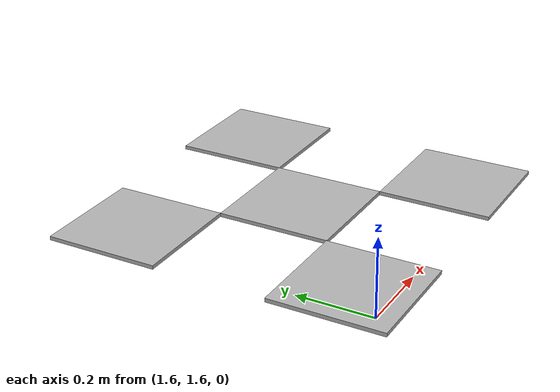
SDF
<?xml version="1.0" ?>
<sdf version="1.4">

	<model name='tag_bundle3'>

		<static>True</static>

		<link name="tag_10">

			<pose>2 2 0 0 1.5713 1.5713</pose>

			<inertial>
	        	<mass>0.1</mass>

	        	<inertia>
					<ixx>0.0166667</ixx>
					<ixy>0</ixy>
					<ixz>0</ixz>
					<iyy>0.0166667</iyy>
					<iyz>0</iyz>
					<izz>0.0166667</izz>
        		</inertia>

        		<pose frame=''>0 0 0 0 -0 0</pose>
      		</inertial>

			<pose frame=''>0 0 0 0 -0 0</pose>
			<gravity>1</gravity>
			<self_collide>0</self_collide>
			<kinematic>0</kinematic>
			<enable_wind>0</enable_wind>

			<visual name='visual_10'>
				<pose frame=''>0 0 0 0 -0 0</pose>

		        <geometry>
		        	<box>
		        	<size>0.01 0.3 0.3</size>
		        	</box>
		        </geometry>

		        <material>
		        	<lighting>0</lighting>

		        	<script>
		        		<uri>models://media/materials/scripts/Apriltag.material</uri>
		        		<name>Apriltag/id10</name>
		          	</script>

		        	<shader type='vertex'>
		        		<normal_map>__default__</normal_map>
		          	</shader>

		        	<ambient>0.3 0.3 0.3 1</ambient>
		        	<diffuse>0.7 0.7 0.7 1</diffuse>
		        	<specular>0.01 0.01 0.01 1</specular>
		        	<emissive>0 0 0 1</emissive>
		        </material>

		        <transparency>0</transparency>
		        <cast_shadows>1</cast_shadows>
			</visual>

			<collision name='collision_10'>
				<laser_retro>0</laser_retro>
        		<max_contacts>10</max_contacts>
        		<pose frame=''>0 0 0 0 -0 0</pose>

		        <geometry>
		        	<box>
		        		<size>0.01 0.3 0.3</size>
		        	</box>
		        </geometry>

		        <surface>
		        	<friction>
		            	<ode>
		            		<mu>1</mu>
		            		<mu2>1</mu2>
		            		<fdir1>0 0 0</fdir1>
		            		<slip1>0</slip1>
		            		<slip2>0</slip2>
		            	</ode>

		           		<torsional>
		            		<coefficient>1</coefficient>
	            			<patch_radius>0</patch_radius>
	            			<surface_radius>0</surface_radius>
	            			<use_patch_radius>1</use_patch_radius>

	            			<ode>
		                		<slip>0</slip>
		              		</ode>
		            	</torsional>
		          	</friction>

		        	<bounce>
		            	<restitution_coefficient>0</restitution_coefficient>
		            	<threshold>1e+06</threshold>
		        	</bounce>

		        	<contact>
		            	<collide_without_contact>0</collide_without_contact>
		            	<collide_without_contact_bitmask>1</collide_without_contact_bitmask>
		            	<collide_bitmask>1</collide_bitmask>

		            	<ode>
		            		<soft_cfm>0</soft_cfm>
		            		<soft_erp>0.2</soft_erp>
		            		<kp>1e+13</kp>
		            		<kd>1</kd>
		            		<max_vel>0.01</max_vel>
		            		<min_depth>0</min_depth>
		            	</ode>

			            <bullet>
			            	<split_impulse>1</split_impulse>
			            	<split_impulse_penetration_threshold>-0.01</split_impulse_penetration_threshold>
			            	<soft_cfm>0</soft_cfm>
			            	<soft_erp>0.2</soft_erp>
			            	<kp>1e+13</kp>
			            	<kd>1</kd>
			            </bullet>
		        	</contact>
		        </surface>
		    </collision>
		</link>

		<link name="tag_11">

			<pose>2.3 1.7 0 0 1.5713 1.5713</pose>

			<inertial>
	        	<mass>0.1</mass>

	        	<inertia>
					<ixx>0.0166667</ixx>
					<ixy>0</ixy>
					<ixz>0</ixz>
					<iyy>0.0166667</iyy>
					<iyz>0</iyz>
					<izz>0.0166667</izz>
        		</inertia>

        		<pose frame=''>0 0 0 0 -0 0</pose>
      		</inertial>

			<pose frame=''>0 0 0 0 -0 0</pose>
			<gravity>1</gravity>
			<self_collide>0</self_collide>
			<kinematic>0</kinematic>
			<enable_wind>0</enable_wind>

 			<visual name='visual_11'>
				<pose frame=''>0 0 0 0 -0 0</pose>

		        <geometry>
		        	<box>
		        	<size>0.01 0.3 0.3</size>
		        	</box>
		        </geometry>

		        <material>
		        	<lighting>0</lighting>

		        	<script>
		        		<uri>models://media/materials/scripts/Apriltag.material</uri>
		        		<name>Apriltag/id11</name>
		          	</script>

		        	<shader type='vertex'>
		        		<normal_map>__default__</normal_map>
		          	</shader>

		        	<ambient>0.3 0.3 0.3 1</ambient>
		        	<diffuse>0.7 0.7 0.7 1</diffuse>
		        	<specular>0.01 0.01 0.01 1</specular>
		        	<emissive>0 0 0 1</emissive>
		        </material>

		        <transparency>0</transparency>
		        <cast_shadows>1</cast_shadows>
			</visual>

			<collision name='collision_11'>
				<laser_retro>0</laser_retro>
        		<max_contacts>10</max_contacts>
        		<pose frame=''>0 0 0 0 -0 0</pose>

		        <geometry>
		        	<box>
		        		<size>0.01 0.3 0.3</size>
		        	</box>
		        </geometry>

		        <surface>
		        	<friction>
		            	<ode>
		            		<mu>1</mu>
		            		<mu2>1</mu2>
		            		<fdir1>0 0 0</fdir1>
		            		<slip1>0</slip1>
		            		<slip2>0</slip2>
		            	</ode>

		           		<torsional>
		            		<coefficient>1</coefficient>
	            			<patch_radius>0</patch_radius>
	            			<surface_radius>0</surface_radius>
	            			<use_patch_radius>1</use_patch_radius>

	            			<ode>
		                		<slip>0</slip>
		              		</ode>
		            	</torsional>
		          	</friction>

		        	<bounce>
		            	<restitution_coefficient>0</restitution_coefficient>
		            	<threshold>1e+06</threshold>
		        	</bounce>

		        	<contact>
		            	<collide_without_contact>0</collide_without_contact>
		            	<collide_without_contact_bitmask>1</collide_without_contact_bitmask>
		            	<collide_bitmask>1</collide_bitmask>

		            	<ode>
		            		<soft_cfm>0</soft_cfm>
		            		<soft_erp>0.2</soft_erp>
		            		<kp>1e+13</kp>
		            		<kd>1</kd>
		            		<max_vel>0.01</max_vel>
		            		<min_depth>0</min_depth>
		            	</ode>

			            <bullet>
			            	<split_impulse>1</split_impulse>
			            	<split_impulse_penetration_threshold>-0.01</split_impulse_penetration_threshold>
			            	<soft_cfm>0</soft_cfm>
			            	<soft_erp>0.2</soft_erp>
			            	<kp>1e+13</kp>
			            	<kd>1</kd>
			            </bullet>
		        	</contact>
		        </surface>
		    </collision>
		</link>

		<link name="tag_12">

			<pose>2.3 2.3 0 0 1.5713 1.5713</pose>

			<inertial>
	        	<mass>0.1</mass>

	        	<inertia>
					<ixx>0.0166667</ixx>
					<ixy>0</ixy>
					<ixz>0</ixz>
					<iyy>0.0166667</iyy>
					<iyz>0</iyz>
					<izz>0.0166667</izz>
        		</inertia>

        		<pose frame=''>0 0 0 0 -0 0</pose>
      		</inertial>

			<pose frame=''>0 0 0 0 -0 0</pose>
			<gravity>1</gravity>
			<self_collide>0</self_collide>
			<kinematic>0</kinematic>
			<enable_wind>0</enable_wind>

			<visual name='visual_12'>
				<pose frame=''>0 0 0 0 -0 0</pose>

		        <geometry>
		        	<box>
		        	<size>0.01 0.3 0.3</size>
		        	</box>
		        </geometry>

		        <material>
		        	<lighting>0</lighting>

		        	<script>
		        		<uri>models://media/materials/scripts/Apriltag.material</uri>
		        		<name>Apriltag/id12</name>
		          	</script>

		        	<shader type='vertex'>
		        		<normal_map>__default__</normal_map>
		          	</shader>

		        	<ambient>0.3 0.3 0.3 1</ambient>
		        	<diffuse>0.7 0.7 0.7 1</diffuse>
		        	<specular>0.01 0.01 0.01 1</specular>
		        	<emissive>0 0 0 1</emissive>
		        </material>

		        <transparency>0</transparency>
		        <cast_shadows>1</cast_shadows>
			</visual>

			<collision name='collision_12'>
				<laser_retro>0</laser_retro>
        		<max_contacts>10</max_contacts>
        		<pose frame=''>0 0 0 0 -0 0</pose>

		        <geometry>
		        	<box>
		        		<size>0.01 0.3 0.3</size>
		        	</box>
		        </geometry>

		        <surface>
		        	<friction>
		            	<ode>
		            		<mu>1</mu>
		            		<mu2>1</mu2>
		            		<fdir1>0 0 0</fdir1>
		            		<slip1>0</slip1>
		            		<slip2>0</slip2>
		            	</ode>

		           		<torsional>
		            		<coefficient>1</coefficient>
	            			<patch_radius>0</patch_radius>
	            			<surface_radius>0</surface_radius>
	            			<use_patch_radius>1</use_patch_radius>

	            			<ode>
		                		<slip>0</slip>
		              		</ode>
		            	</torsional>
		          	</friction>

		        	<bounce>
		            	<restitution_coefficient>0</restitution_coefficient>
		            	<threshold>1e+06</threshold>
		        	</bounce>

		        	<contact>
		            	<collide_without_contact>0</collide_without_contact>
		            	<collide_without_contact_bitmask>1</collide_without_contact_bitmask>
		            	<collide_bitmask>1</collide_bitmask>

		            	<ode>
		            		<soft_cfm>0</soft_cfm>
		            		<soft_erp>0.2</soft_erp>
		            		<kp>1e+13</kp>
		            		<kd>1</kd>
		            		<max_vel>0.01</max_vel>
		            		<min_depth>0</min_depth>
		            	</ode>

			            <bullet>
			            	<split_impulse>1</split_impulse>
			            	<split_impulse_penetration_threshold>-0.01</split_impulse_penetration_threshold>
			            	<soft_cfm>0</soft_cfm>
			            	<soft_erp>0.2</soft_erp>
			            	<kp>1e+13</kp>
			            	<kd>1</kd>
			            </bullet>
		        	</contact>
		        </surface>
		    </collision>
		</link>

		<link name="tag_13">

			<pose>1.7 2.3 0 0 1.5713 1.5713</pose>

			<inertial>
	        	<mass>0.1</mass>

	        	<inertia>
					<ixx>0.0166667</ixx>
					<ixy>0</ixy>
					<ixz>0</ixz>
					<iyy>0.0166667</iyy>
					<iyz>0</iyz>
					<izz>0.0166667</izz>
        		</inertia>

        		<pose frame=''>0 0 0 0 -0 0</pose>
      		</inertial>

			<pose frame=''>0 0 0 0 -0 0</pose>
			<gravity>1</gravity>
			<self_collide>0</self_collide>
			<kinematic>0</kinematic>
			<enable_wind>0</enable_wind>

			<visual name='visual_13'>
				<pose frame=''>0 0 0 0 -0 0</pose>

		        <geometry>
		        	<box>
		        	<size>0.01 0.3 0.3</size>
		        	</box>
		        </geometry>

		        <material>
		        	<lighting>0</lighting>

		        	<script>
		        		<uri>models://media/materials/scripts/Apriltag.material</uri>
		        		<name>Apriltag/id13</name>
		          	</script>

		        	<shader type='vertex'>
		        		<normal_map>__default__</normal_map>
		          	</shader>

		        	<ambient>0.3 0.3 0.3 1</ambient>
		        	<diffuse>0.7 0.7 0.7 1</diffuse>
		        	<specular>0.01 0.01 0.01 1</specular>
		        	<emissive>0 0 0 1</emissive>
		        </material>

		        <transparency>0</transparency>
		        <cast_shadows>1</cast_shadows>
			</visual>

			<collision name='collision_13'>
				<laser_retro>0</laser_retro>
        		<max_contacts>10</max_contacts>
        		<pose frame=''>0 0 0 0 -0 0</pose>

		        <geometry>
		        	<box>
		        		<size>0.01 0.3 0.3</size>
		        	</box>
		        </geometry>

		        <surface>
		        	<friction>
		            	<ode>
		            		<mu>1</mu>
		            		<mu2>1</mu2>
		            		<fdir1>0 0 0</fdir1>
		            		<slip1>0</slip1>
		            		<slip2>0</slip2>
		            	</ode>

		           		<torsional>
		            		<coefficient>1</coefficient>
	            			<patch_radius>0</patch_radius>
	            			<surface_radius>0</surface_radius>
	            			<use_patch_radius>1</use_patch_radius>

	            			<ode>
		                		<slip>0</slip>
		              		</ode>
		            	</torsional>
		          	</friction>

		        	<bounce>
		            	<restitution_coefficient>0</restitution_coefficient>
		            	<threshold>1e+06</threshold>
		        	</bounce>

		        	<contact>
		            	<collide_without_contact>0</collide_without_contact>
		            	<collide_without_contact_bitmask>1</collide_without_contact_bitmask>
		            	<collide_bitmask>1</collide_bitmask>

		            	<ode>
		            		<soft_cfm>0</soft_cfm>
		            		<soft_erp>0.2</soft_erp>
		            		<kp>1e+13</kp>
		            		<kd>1</kd>
		            		<max_vel>0.01</max_vel>
		            		<min_depth>0</min_depth>
		            	</ode>

			            <bullet>
			            	<split_impulse>1</split_impulse>
			            	<split_impulse_penetration_threshold>-0.01</split_impulse_penetration_threshold>
			            	<soft_cfm>0</soft_cfm>
			            	<soft_erp>0.2</soft_erp>
			            	<kp>1e+13</kp>
			            	<kd>1</kd>
			            </bullet>
		        	</contact>
		        </surface>
		    </collision>
		</link>

		<link name="tag_14">

			<pose>1.7 1.7 0 0 1.5713 1.5713</pose>

			<inertial>
	        	<mass>0.1</mass>

	        	<inertia>
					<ixx>0.0166667</ixx>
					<ixy>0</ixy>
					<ixz>0</ixz>
					<iyy>0.0166667</iyy>
					<iyz>0</iyz>
					<izz>0.0166667</izz>
        		</inertia>

        		<pose frame=''>0 0 0 0 -0 0</pose>
      		</inertial>

			<pose frame=''>0 0 0 0 -0 0</pose>
			<gravity>1</gravity>
			<self_collide>0</self_collide>
			<kinematic>0</kinematic>
			<enable_wind>0</enable_wind>

			<visual name='visual_14'>
				<pose frame=''>0 0 0 0 -0 0</pose>

		        <geometry>
		        	<box>
		        	<size>0.01 0.3 0.3</size>
		        	</box>
		        </geometry>

		        <material>
		        	<lighting>0</lighting>

		        	<script>
		        		<uri>models://media/materials/scripts/Apriltag.material</uri>
		        		<name>Apriltag/id14</name>
		          	</script>

		        	<shader type='vertex'>
		        		<normal_map>__default__</normal_map>
		          	</shader>

		        	<ambient>0.3 0.3 0.3 1</ambient>
		        	<diffuse>0.7 0.7 0.7 1</diffuse>
		        	<specular>0.01 0.01 0.01 1</specular>
		        	<emissive>0 0 0 1</emissive>
		        </material>

		        <transparency>0</transparency>
		        <cast_shadows>1</cast_shadows>
			</visual>

			<collision name='collision_14'>
				<laser_retro>0</laser_retro>
        		<max_contacts>10</max_contacts>
        		<pose frame=''>0 0 0 0 -0 0</pose>

		        <geometry>
		        	<box>
		        		<size>0.01 0.3 0.3</size>
		        	</box>
		        </geometry>

		        <surface>
		        	<friction>
		            	<ode>
		            		<mu>1</mu>
		            		<mu2>1</mu2>
		            		<fdir1>0 0 0</fdir1>
		            		<slip1>0</slip1>
		            		<slip2>0</slip2>
		            	</ode>

		           		<torsional>
		            		<coefficient>1</coefficient>
	            			<patch_radius>0</patch_radius>
	            			<surface_radius>0</surface_radius>
	            			<use_patch_radius>1</use_patch_radius>

	            			<ode>
		                		<slip>0</slip>
		              		</ode>
		            	</torsional>
		          	</friction>

		        	<bounce>
		            	<restitution_coefficient>0</restitution_coefficient>
		            	<threshold>1e+06</threshold>
		        	</bounce>

		        	<contact>
		            	<collide_without_contact>0</collide_without_contact>
		            	<collide_without_contact_bitmask>1</collide_without_contact_bitmask>
		            	<collide_bitmask>1</collide_bitmask>

		            	<ode>
		            		<soft_cfm>0</soft_cfm>
		            		<soft_erp>0.2</soft_erp>
		            		<kp>1e+13</kp>
		            		<kd>1</kd>
		            		<max_vel>0.01</max_vel>
		            		<min_depth>0</min_depth>
		            	</ode>

			            <bullet>
			            	<split_impulse>1</split_impulse>
			            	<split_impulse_penetration_threshold>-0.01</split_impulse_penetration_threshold>
			            	<soft_cfm>0</soft_cfm>
			            	<soft_erp>0.2</soft_erp>
			            	<kp>1e+13</kp>
			            	<kd>1</kd>
			            </bullet>
		        	</contact>
		        </surface>
		    </collision>
		</link>

		<joint name = "joint_1" type="fixed">
			<axis xyz="0 0 0" />
			<parent link="tag_10" />
			<child link="tag_11" />
	    </joint>

	    <joint name = "joint_2" type="fixed">
			<axis xyz="0 0 0" />
			<parent link="tag_10" />
			<child link="tag_12" />
	    </joint>

	    <joint name = "joint_3" type="fixed">
			<axis xyz="0 0 0" />
			<parent link="tag_10" />
			<child link="tag_13" />
	    </joint>

	    <joint name = "joint_4" type="fixed">
			<axis xyz="0 0 0" />
			<parent link="tag_10" />
			<child link="tag_14" />
	    </joint>

	</model>

</sdf>
